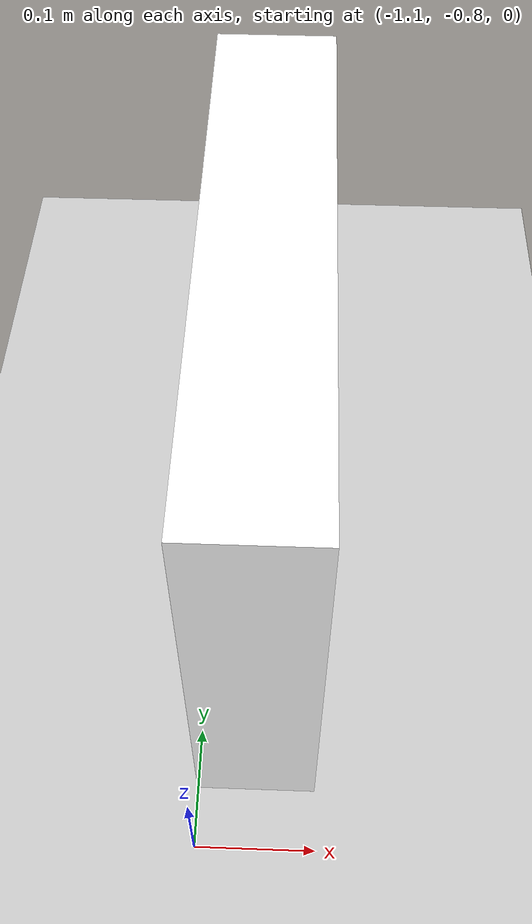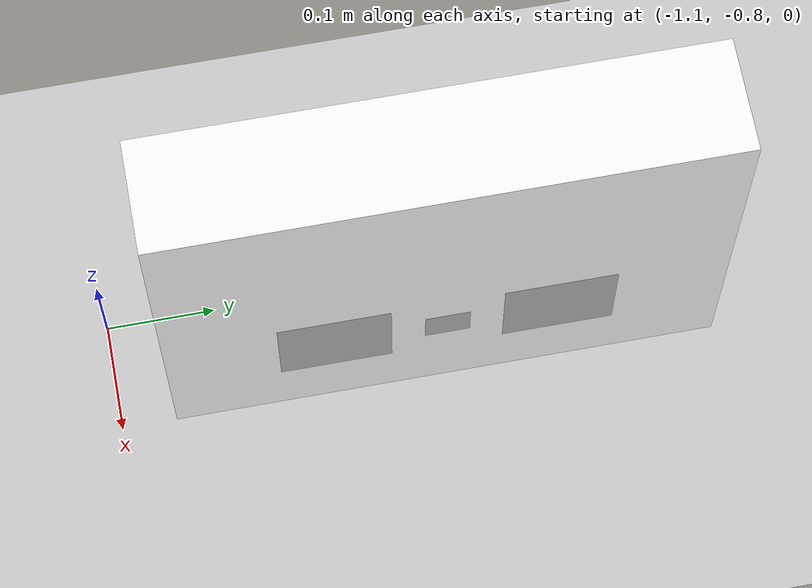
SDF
<sdf version="1.6">
 <world name="default">
  <include><uri>model://ground_plane</uri></include>
  <include><uri>model://sun</uri></include>
  <include>
   <uri>model://MiniMockCharger</uri>
   <name>charger_base1</name>
   <pose>-1.0 -0.5 0 0 0 0</pose>
   <static>True</static>
  </include>
  <scene><shadows>false</shadows></scene>
  <physics type="ode">
   <real_time_update_rate>1000.0</real_time_update_rate>
   <max_step_size>0.001</max_step_size>
   <real_time_factor>1</real_time_factor>
   <ode>
    <solver>
     <type>quick</type>
     <iters>150</iters>
     <precon_iters>0</precon_iters>
     <sor>1.400000</sor>
     <use_dynamic_moi_rescaling>1</use_dynamic_moi_rescaling>
    </solver>
    <constraints>
     <cfm>0.00001</cfm>
     <erp>0.2</erp>
     <contact_max_correcting_vel>2000.000000</contact_max_correcting_vel>
     <contact_surface_layer>0.01000</contact_surface_layer>
    </constraints>
   </ode>
  </physics>
 </world>
</sdf>

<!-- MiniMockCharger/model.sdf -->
<sdf version='1.6'>
  <model name='MiniMockCharger'>
    <allow_auto_disable>0</allow_auto_disable>
    <static>0</static>

    <!-- Charger Base: Offset to make sure origin is at bottom center-->
    <link name='charger_base'>
      <pose> -0.051 0 0.2 0 0 0</pose>

      <collision name='collision'>
        <geometry>
          <box>
            <size>.1 .5 0.4</size>
          </box>
        </geometry>
      </collision>

      <visual name='visual'>
        <geometry>
          <box>
            <size>.1 .5 0.4</size>
          </box>
        </geometry>
        <material>
          <ambient>.8 1 1 1</ambient>
          <diffuse>1 1 1 1</diffuse>
          <specular>0.1 0.1 0.1 1</specular>
          <emissive>0.3 0.3 0.3 0</emissive>
        </material>
      </visual>
    </link>

    <!-- Offset -10cm from centre-->
    <link name='left_marker'>
      <pose> 0 -0.1 0.13 -0 -1.57 3.14</pose>
      <visual name='visual'>
        <geometry>
          <box>
            <size>0.1 0.1 1e-5</size>
          </box>
        </geometry>
        <material>
          <script>
            <uri>model://Fiducial10/materials/scripts</uri>
            <uri>model://Fiducial10/materials/textures</uri>
            <name>Fiducial10/Marker</name>
          </script>
          <specular>0 0 0 1</specular>
          <emissive>1 1 1 0</emissive>
        </material>
      </visual>
    </link>

    <link name='centre_marker'>
      <pose> 0 0 0.13 -0 -1.57 3.14</pose>
      <visual name='visual'>
        <geometry>
          <box>
            <size>0.04 0.04 1e-5</size>
          </box>
        </geometry>
        <material>
          <script>
            <uri>model://Fiducial20/materials/scripts</uri>
            <uri>model://Fiducial20/materials/textures</uri>
            <name>Fiducial20/Marker</name>
          </script>
          <specular>0 0 0 1</specular>
          <emissive>1 1 1 0</emissive>
        </material>
      </visual>
    </link>

    <!-- Offset +10cm from centre-->
    <link name='right_marker'>
      <pose> 0 0.1 0.13 -0 -1.57 3.14</pose>
      <visual name='visual'>
        <geometry>
          <box>
            <size>0.1 0.1 1e-5</size>
          </box>
        </geometry>
        <material>
          <script>
            <uri>model://Fiducial11/materials/scripts</uri>
            <uri>model://Fiducial11/materials/textures</uri>
            <name>Fiducial11/Marker</name>
          </script>
          <specular>0 0 0 1</specular>
          <emissive>1 1 1 0</emissive>
        </material>
      </visual>
    </link>

    <joint name="aruco_tag_joint1" type="fixed">
      <parent>charger_base</parent>
      <child>left_marker</child>
    </joint>

    <joint name="aruco_tag_joint2" type="fixed">
      <parent>charger_base</parent>
      <child>centre_marker</child>
    </joint>

    <joint name="aruco_tag_joint3" type="fixed">
      <parent>charger_base</parent>
      <child>right_marker</child>
    </joint>

    <joint name="charger_contact_joint" type="fixed">
      <parent>charger_base</parent>
      <child>charger_contact</child>
    </joint>
  </model>
</sdf>
